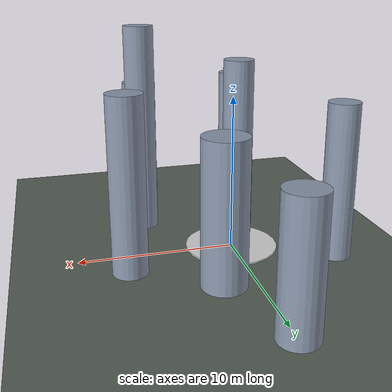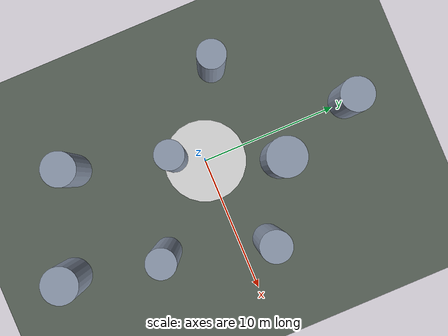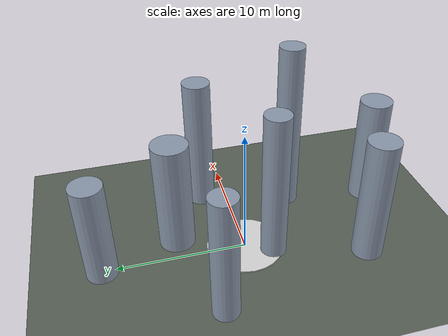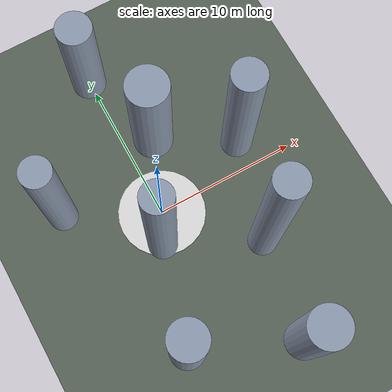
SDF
<?xml version="1.0" ?>
<sdf version="1.9">
  <world name="pillars">
    <!-- @physics -->
    <gravity>0 0 -9.8</gravity>
    <spherical_coordinates>
      <surface_model>EARTH_WGS84</surface_model><world_frame_orientation>ENU</world_frame_orientation>
      <latitude_deg>47.3977</latitude_deg><longitude_deg>8.5456</longitude_deg><elevation>488.0</elevation><heading_deg>0</heading_deg>
    </spherical_coordinates>
    <scene><ambient>0.45 0.45 0.5 1</ambient><background>0.68 0.78 0.9 1</background><shadows>true</shadows></scene>
    <light type="directional" name="sun">
      <cast_shadows>true</cast_shadows><pose>0 0 60 0 0 0</pose>
      <diffuse>0.9 0.88 0.8 1</diffuse><specular>0.3 0.3 0.3 1</specular><direction>-0.4 0.3 -0.85</direction>
    </light>
    <model name="ground"><static>true</static><link name="link">
      <collision name="collision"><geometry><plane><normal>0 0 1</normal><size>400 400</size></plane></geometry>
        <surface><friction><ode><mu>100</mu><mu2>50</mu2></ode></friction></surface></collision>
      <visual name="visual"><geometry><plane><normal>0 0 1</normal><size>400 400</size></plane></geometry>
        <material><ambient>0.34 0.38 0.34 1</ambient><diffuse>0.34 0.38 0.34 1</diffuse><specular>0.05 0.05 0.05 1</specular></material></visual>
    </link></model>
    <model name="pad_alpha"><static>true</static><pose>0 0 0.05 0 0 0</pose><link name="link">
      <collision name="c"><geometry><cylinder><radius>3</radius><length>0.1</length></cylinder></geometry></collision>
      <visual name="v"><geometry><cylinder><radius>3</radius><length>0.1</length></cylinder></geometry>
        <material><ambient>0.85 0.85 0.85 1</ambient><diffuse>0.85 0.85 0.85 1</diffuse></material></visual>
    </link></model>
    <model name="pillar_00"><static>true</static><pose>-3 -9 5.0 0 0 0</pose><link name="link">
      <collision name="c"><geometry><cylinder><radius>1.2</radius><length>10</length></cylinder></geometry></collision>
      <visual name="v"><geometry><cylinder><radius>1.2</radius><length>10</length></cylinder></geometry>
        <material><ambient>0.55 0.6 0.68 1</ambient><diffuse>0.55 0.6 0.68 1</diffuse></material></visual>
    </link></model>
    <model name="pillar_01"><static>true</static><pose>-1 -2 6.0 0 0 0</pose><link name="link">
      <collision name="c"><geometry><cylinder><radius>1.0</radius><length>12</length></cylinder></geometry></collision>
      <visual name="v"><geometry><cylinder><radius>1.0</radius><length>12</length></cylinder></geometry>
        <material><ambient>0.55 0.6 0.68 1</ambient><diffuse>0.55 0.6 0.68 1</diffuse></material></visual>
    </link></model>
    <model name="pillar_02"><static>true</static><pose>2 5 4.5 0 0 0</pose><link name="link">
      <collision name="c"><geometry><cylinder><radius>1.4</radius><length>9</length></cylinder></geometry></collision>
      <visual name="v"><geometry><cylinder><radius>1.4</radius><length>9</length></cylinder></geometry>
        <material><ambient>0.55 0.6 0.68 1</ambient><diffuse>0.55 0.6 0.68 1</diffuse></material></visual>
    </link></model>
    <model name="pillar_03"><static>true</static><pose>5 -5 7.0 0 0 0</pose><link name="link">
      <collision name="c"><geometry><cylinder><radius>1.0</radius><length>14</length></cylinder></geometry></collision>
      <visual name="v"><geometry><cylinder><radius>1.0</radius><length>14</length></cylinder></geometry>
        <material><ambient>0.55 0.6 0.68 1</ambient><diffuse>0.55 0.6 0.68 1</diffuse></material></visual>
    </link></model>
    <model name="pillar_04"><static>true</static><pose>0 11 4.0 0 0 0</pose><link name="link">
      <collision name="c"><geometry><cylinder><radius>1.2</radius><length>8</length></cylinder></geometry></collision>
      <visual name="v"><geometry><cylinder><radius>1.2</radius><length>8</length></cylinder></geometry>
        <material><ambient>0.55 0.6 0.68 1</ambient><diffuse>0.55 0.6 0.68 1</diffuse></material></visual>
    </link></model>
    <model name="pillar_05"><static>true</static><pose>7 2 5.5 0 0 0</pose><link name="link">
      <collision name="c"><geometry><cylinder><radius>1.1</radius><length>11</length></cylinder></geometry></collision>
      <visual name="v"><geometry><cylinder><radius>1.1</radius><length>11</length></cylinder></geometry>
        <material><ambient>0.55 0.6 0.68 1</ambient><diffuse>0.55 0.6 0.68 1</diffuse></material></visual>
    </link></model>
    <model name="pillar_06"><static>true</static><pose>-6 3 5.0 0 0 0</pose><link name="link">
      <collision name="c"><geometry><cylinder><radius>1.0</radius><length>10</length></cylinder></geometry></collision>
      <visual name="v"><geometry><cylinder><radius>1.0</radius><length>10</length></cylinder></geometry>
        <material><ambient>0.55 0.6 0.68 1</ambient><diffuse>0.55 0.6 0.68 1</diffuse></material></visual>
    </link></model>
    <model name="pillar_07"><static>true</static><pose>4 -12 4.5 0 0 0</pose><link name="link">
      <collision name="c"><geometry><cylinder><radius>1.3</radius><length>9</length></cylinder></geometry></collision>
      <visual name="v"><geometry><cylinder><radius>1.3</radius><length>9</length></cylinder></geometry>
        <material><ambient>0.55 0.6 0.68 1</ambient><diffuse>0.55 0.6 0.68 1</diffuse></material></visual>
    </link></model>
    <!-- @agents -->
  </world>
</sdf>
